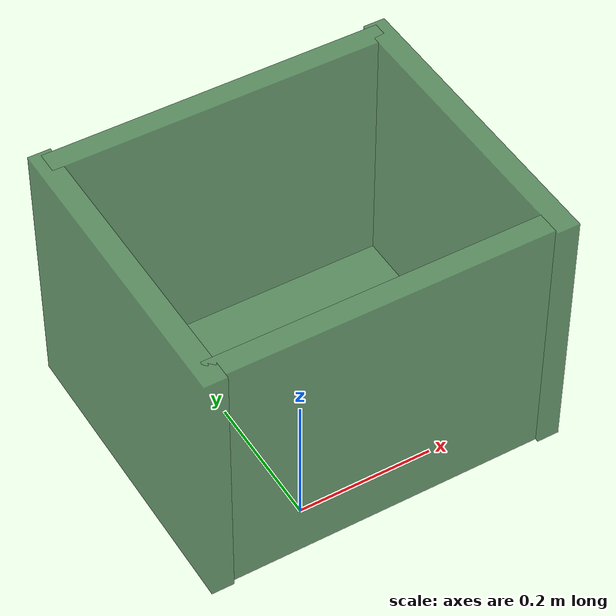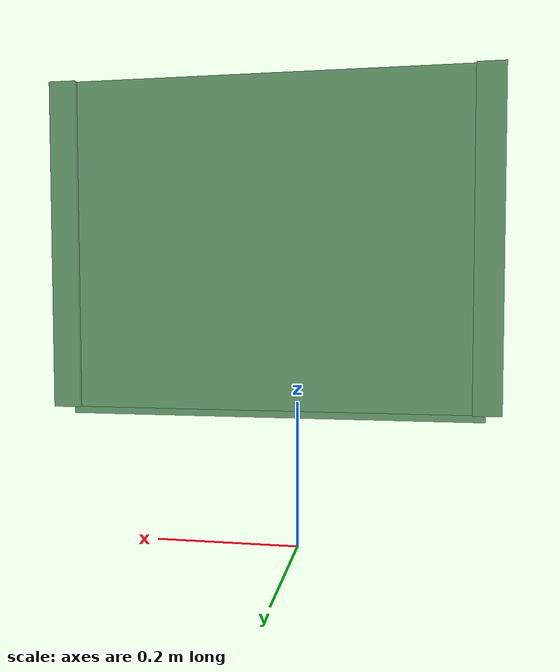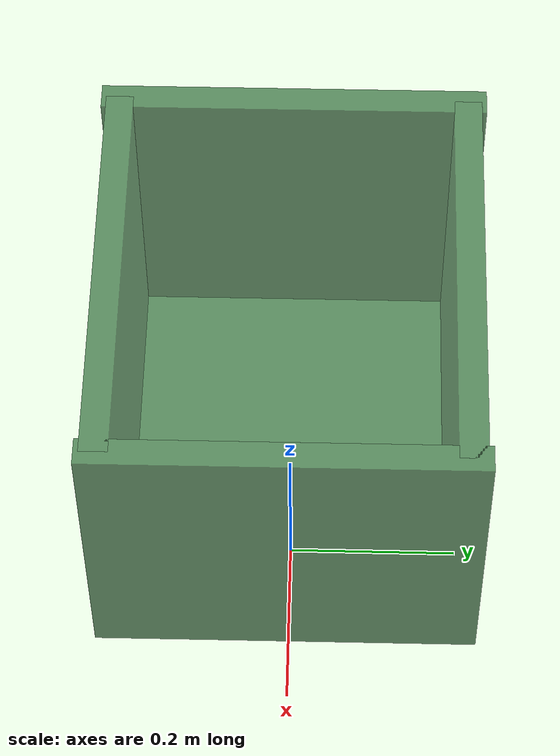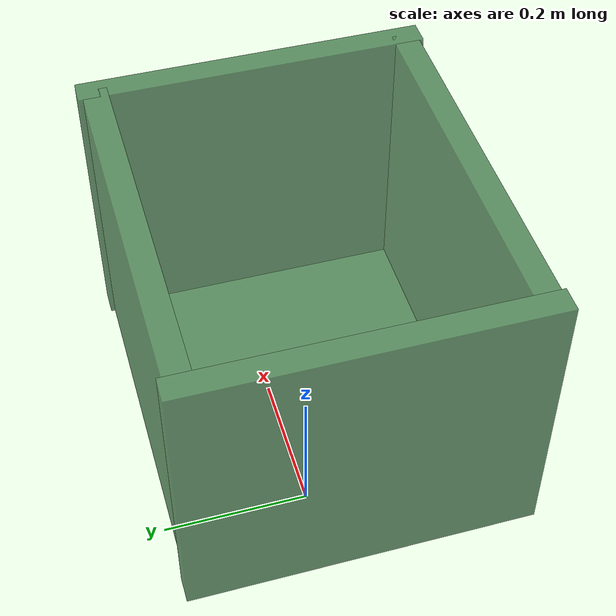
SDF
<?xml version="1.0"?>
<sdf version="1.9">
  <model name="good_pick_basket">
    <static>true</static>
    <link name="link">
      <collision name="floor_collision">
        <pose>0 0 0.22 0 0 0</pose>
        <geometry><box><size>0.52 0.44 0.04</size></box></geometry>
        <surface>
          <friction>
            <ode><mu>100</mu><mu2>100</mu2><slip1>0</slip1><slip2>0</slip2></ode>
          </friction>
          <contact><ode><kp>1000000</kp><kd>100</kd><max_vel>0.0</max_vel><min_depth>0.002</min_depth></ode></contact>
          <bounce><restitution_coefficient>0.0</restitution_coefficient><threshold>1000000.0</threshold></bounce>
        </surface>
      </collision>
      <collision name="front_collision">
        <pose>0.26 0 0.45 0 0 0</pose>
        <geometry><box><size>0.06 0.50 0.50</size></box></geometry>
        <surface>
          <friction>
            <ode><mu>100</mu><mu2>100</mu2><slip1>0</slip1><slip2>0</slip2></ode>
          </friction>
          <contact><ode><kp>1000000</kp><kd>100</kd><max_vel>0.0</max_vel><min_depth>0.002</min_depth></ode></contact>
          <bounce><restitution_coefficient>0.0</restitution_coefficient><threshold>1000000.0</threshold></bounce>
        </surface>
      </collision>
      <collision name="back_collision">
        <pose>-0.26 0 0.45 0 0 0</pose>
        <geometry><box><size>0.06 0.50 0.50</size></box></geometry>
        <surface>
          <friction>
            <ode><mu>100</mu><mu2>100</mu2><slip1>0</slip1><slip2>0</slip2></ode>
          </friction>
          <contact><ode><kp>1000000</kp><kd>100</kd><max_vel>0.0</max_vel><min_depth>0.002</min_depth></ode></contact>
          <bounce><restitution_coefficient>0.0</restitution_coefficient><threshold>1000000.0</threshold></bounce>
        </surface>
      </collision>
      <collision name="left_collision">
        <pose>0 0.22 0.45 0 0 0</pose>
        <geometry><box><size>0.52 0.06 0.50</size></box></geometry>
        <surface>
          <friction>
            <ode><mu>100</mu><mu2>100</mu2><slip1>0</slip1><slip2>0</slip2></ode>
          </friction>
          <contact><ode><kp>1000000</kp><kd>100</kd><max_vel>0.0</max_vel><min_depth>0.002</min_depth></ode></contact>
          <bounce><restitution_coefficient>0.0</restitution_coefficient><threshold>1000000.0</threshold></bounce>
        </surface>
      </collision>
      <collision name="right_collision">
        <pose>0 -0.22 0.45 0 0 0</pose>
        <geometry><box><size>0.52 0.06 0.50</size></box></geometry>
        <surface>
          <friction>
            <ode><mu>100</mu><mu2>100</mu2><slip1>0</slip1><slip2>0</slip2></ode>
          </friction>
          <contact><ode><kp>1000000</kp><kd>100</kd><max_vel>0.0</max_vel><min_depth>0.002</min_depth></ode></contact>
          <bounce><restitution_coefficient>0.0</restitution_coefficient><threshold>1000000.0</threshold></bounce>
        </surface>
      </collision>
      <visual name="floor_visual">
        <pose>0 0 0.22 0 0 0</pose>
        <geometry><box><size>0.46 0.38 0.02</size></box></geometry>
        <material><ambient>0.20 0.45 0.24 0.75</ambient><diffuse>0.20 0.45 0.24 0.75</diffuse></material>
      </visual>
      <visual name="front_visual">
        <pose>0.23 0 0.40 0 0 0</pose>
        <geometry><box><size>0.03 0.42 0.36</size></box></geometry>
        <material><ambient>0.20 0.45 0.24 0.75</ambient><diffuse>0.20 0.45 0.24 0.75</diffuse></material>
      </visual>
      <visual name="back_visual">
        <pose>-0.23 0 0.40 0 0 0</pose>
        <geometry><box><size>0.03 0.42 0.36</size></box></geometry>
        <material><ambient>0.20 0.45 0.24 0.75</ambient><diffuse>0.20 0.45 0.24 0.75</diffuse></material>
      </visual>
      <visual name="left_visual">
        <pose>0 0.19 0.40 0 0 0</pose>
        <geometry><box><size>0.46 0.03 0.36</size></box></geometry>
        <material><ambient>0.20 0.45 0.24 0.75</ambient><diffuse>0.20 0.45 0.24 0.75</diffuse></material>
      </visual>
      <visual name="right_visual">
        <pose>0 -0.19 0.40 0 0 0</pose>
        <geometry><box><size>0.46 0.03 0.36</size></box></geometry>
        <material><ambient>0.20 0.45 0.24 0.75</ambient><diffuse>0.20 0.45 0.24 0.75</diffuse></material>
      </visual>
    </link>
  </model>
</sdf>
